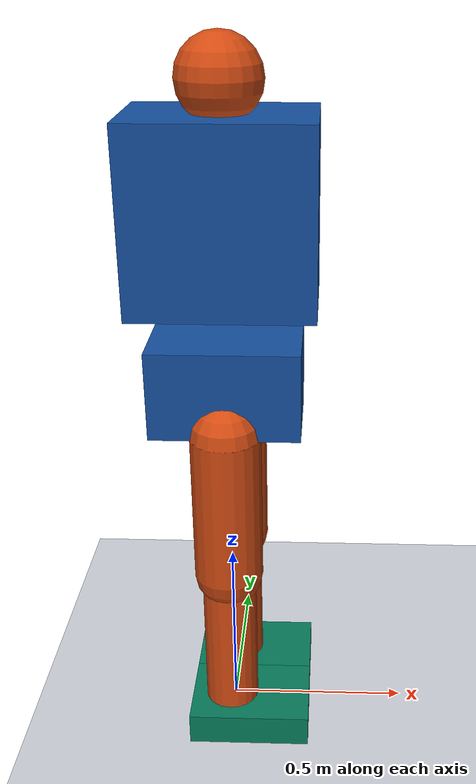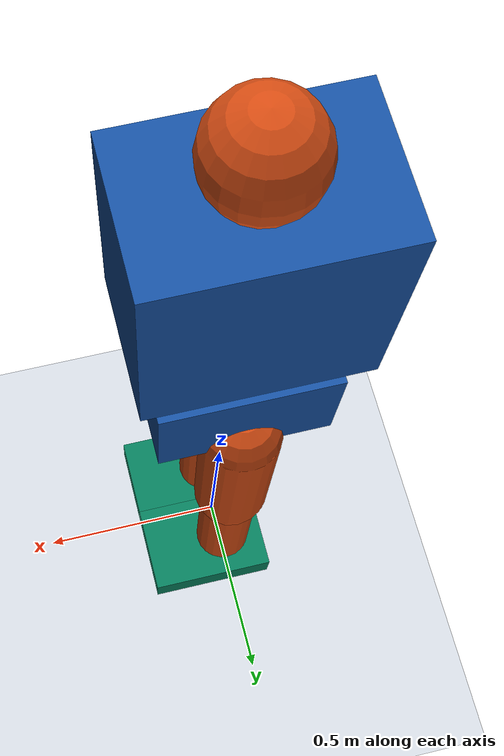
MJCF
<mujoco model="mini_humanoid">
  <compiler angle="radian" coordinate="local" inertiafromgeom="true" autolimits="true"/>
  <option timestep="0.002" integrator="implicitfast" gravity="0 0 -9.81" iterations="80" solver="Newton"/>
  <visual>
    <global offwidth="1920" offheight="1080"/>
    <headlight ambient="0.42 0.45 0.50" diffuse="0.78 0.80 0.84" specular="0.18 0.20 0.24"/>
    <quality shadowsize="2048" offsamples="4"/>
  </visual>
  <size njmax="200" nconmax="80"/>
  <default>
    <joint damping="1.0" armature="0.02" limited="true"/>
    <geom friction="0.7 0.1 0.02" solref="0.004 1" solimp="0.9 0.95 0.001"/>
    <motor ctrllimited="true" ctrlrange="-180 180" gear="1"/>
  </default>
  <asset>
    <texture name="sky_tex" type="skybox" builtin="gradient" width="512" height="512" rgb1="0.96 0.97 0.99" rgb2="0.78 0.84 0.91"/>
    <texture name="floor_tex" type="2d" builtin="checker" width="256" height="256" rgb1="0.73 0.76 0.80" rgb2="0.88 0.89 0.91"/>
    <material name="floor_mat" texture="floor_tex" texrepeat="7 7" reflectance="0.04"/>
    <material name="body_mat" rgba="0.08 0.31 0.62 1"/>
    <material name="joint_mat" rgba="0.82 0.29 0.07 1"/>
    <material name="foot_mat" rgba="0.02 0.48 0.35 1"/>
  </asset>
  <worldbody>
    <geom name="ground" type="plane" size="8 8 0.1" material="floor_mat" contype="1" conaffinity="1"/>
    <camera name="track" mode="targetbody" target="pelvis" pos="2.2 -3.0 1.6" fovy="36"/>
    <body name="pelvis" pos="0 0 1.04999">
      <freejoint name="root"/>
      <geom name="pelvis_geom" type="box" pos="0 0 0" size="0.20 0.14 0.12" material="body_mat" mass="7"/>
      <body name="torso" pos="0 0 0.22">
        <geom name="torso_geom" type="box" pos="0 0 0.23" size="0.24 0.16 0.24" material="body_mat" mass="12"/>
        <body name="head" pos="0 0 0.55">
          <geom name="head_geom" type="sphere" size="0.11" material="joint_mat" mass="2"/>
        </body>
      </body>
      <body name="left_thigh" pos="0 0.11 -0.12">
        <joint name="left_hip_pitch" type="hinge" axis="1 0 0" range="-1.5 1.5"/>
        <joint name="left_hip_roll" type="hinge" axis="0 1 0" range="-0.7 0.7"/>
        <geom name="left_thigh_geom" type="capsule" fromto="0 0 0 0 0 -0.42" size="0.095" material="joint_mat" mass="4"/>
        <body name="left_shin" pos="0 0 -0.42">
          <joint name="left_knee" type="hinge" axis="1 0 0" range="-2.4 0.1"/>
          <geom name="left_shin_geom" type="capsule" fromto="0 0 0 0 0 -0.42" size="0.075" material="joint_mat" mass="3"/>
          <body name="left_foot" pos="0 0 -0.42">
            <joint name="left_ankle_pitch" type="hinge" axis="1 0 0" range="-1.0 1.0"/>
            <geom name="left_foot_geom" type="box" pos="0.055 0 -0.045" size="0.17 0.12 0.045" material="foot_mat" mass="1.5"/>
          </body>
        </body>
      </body>
      <body name="right_thigh" pos="0 -0.11 -0.12">
        <joint name="right_hip_pitch" type="hinge" axis="1 0 0" range="-1.5 1.5"/>
        <joint name="right_hip_roll" type="hinge" axis="0 1 0" range="-0.7 0.7"/>
        <geom name="right_thigh_geom" type="capsule" fromto="0 0 0 0 0 -0.42" size="0.095" material="joint_mat" mass="4"/>
        <body name="right_shin" pos="0 0 -0.42">
          <joint name="right_knee" type="hinge" axis="1 0 0" range="-2.4 0.1"/>
          <geom name="right_shin_geom" type="capsule" fromto="0 0 0 0 0 -0.42" size="0.075" material="joint_mat" mass="3"/>
          <body name="right_foot" pos="0 0 -0.42">
            <joint name="right_ankle_pitch" type="hinge" axis="1 0 0" range="-1.0 1.0"/>
            <geom name="right_foot_geom" type="box" pos="0.055 0 -0.045" size="0.17 0.12 0.045" material="foot_mat" mass="1.5"/>
          </body>
        </body>
      </body>
    </body>
  </worldbody>
  <actuator>
    <motor name="left_hip_pitch_motor" joint="left_hip_pitch" ctrlrange="-180 180"/>
    <motor name="left_hip_roll_motor" joint="left_hip_roll" ctrlrange="-180 180"/>
    <motor name="left_knee_motor" joint="left_knee" ctrlrange="-180 180"/>
    <motor name="left_ankle_pitch_motor" joint="left_ankle_pitch" ctrlrange="-180 180"/>
    <motor name="right_hip_pitch_motor" joint="right_hip_pitch" ctrlrange="-180 180"/>
    <motor name="right_hip_roll_motor" joint="right_hip_roll" ctrlrange="-180 180"/>
    <motor name="right_knee_motor" joint="right_knee" ctrlrange="-180 180"/>
    <motor name="right_ankle_pitch_motor" joint="right_ankle_pitch" ctrlrange="-180 180"/>
  </actuator>
</mujoco>
